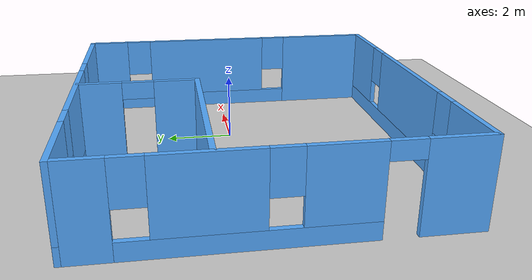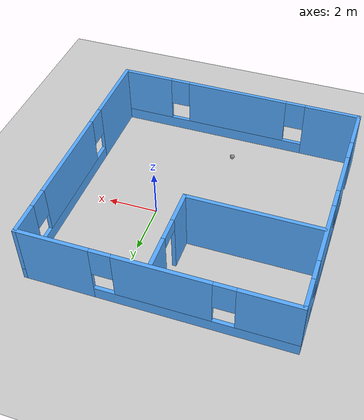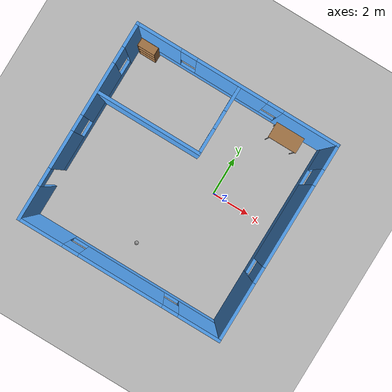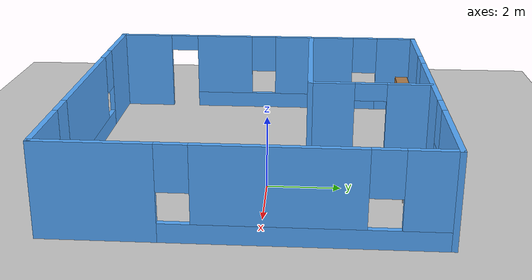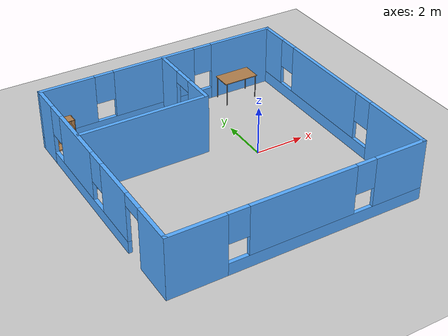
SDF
<sdf version="1.6">
 <world name="default">
  <model name="ground_plane">
   <static>1</static>
   <link name="link">
    <collision name="collision">
     <geometry><plane><normal>0 0 1</normal><size>100 100</size></plane></geometry>
     <surface>
      <contact><collide_bitmask>65535</collide_bitmask></contact>
      <friction><ode><mu>100</mu><mu2>50</mu2></ode></friction>
     </surface>
    </collision>
    <visual name="visual">
     <cast_shadows>0</cast_shadows>
     <geometry><plane><normal>0 0 1</normal><size>100 100</size></plane></geometry>
     <material>
      <script><uri>file://media/materials/scripts/gazebo.material</uri><name>Gazebo/Grey</name></script>
     </material>
    </visual>
   </link>
  </model>
  <light name="sun" type="directional">
   <pose>0 0 10 0 -0 0</pose>
   <diffuse>0.8 0.8 0.8 1</diffuse>
   <specular>0.2 0.2 0.2 1</specular>
   <attenuation>
    <range>1000</range>
    <constant>0.9</constant>
    <linear>0.01</linear>
    <quadratic>0.001</quadratic>
   </attenuation>
   <direction>-0.5 0.1 -0.9</direction>
  </light>
  <gravity>0 0 -9.8</gravity>
  <magnetic_field>6e-06 2.3e-05 -4.2e-05</magnetic_field>
  <atmosphere type="adiabatic"/>
  <physics name="default_physics" default="0" type="ode">
   <max_step_size>0.001</max_step_size>
   <real_time_factor>1</real_time_factor>
   <real_time_update_rate>1000</real_time_update_rate>
  </physics>
  <scene><ambient>0.4 0.4 0.4 1</ambient><background>0.7 0.7 0.7 1</background><shadows>1</shadows></scene>
  <spherical_coordinates>
   <surface_model>EARTH_WGS84</surface_model>
   <latitude_deg>0</latitude_deg>
   <longitude_deg>0</longitude_deg>
   <elevation>0</elevation>
   <heading_deg>0</heading_deg>
  </spherical_coordinates>
  <model name="my_building">
   <pose>-1.74815 -0.39506 0 0 -0 0</pose>
   <link name="Wall_0">
    <pose>-5.05 0 0 0 0 -1.5708</pose>
    <visual name="Wall_0_Visual_0">
     <pose>-4.36715 0 1.25 0 -0 0</pose>
     <geometry><box><size>1.26569 0.15 2.5</size></box></geometry>
     <material>
      <script><uri>file://media/materials/scripts/gazebo.material</uri><name>Gazebo/Grey</name></script>
      <ambient>0.333333 0.666667 1 1</ambient>
     </material>
     <meta><layer>0</layer></meta>
    </visual>
    <collision name="Wall_0_Collision_0">
     <geometry><box><size>1.26569 0.15 2.5</size></box></geometry>
     <pose>-4.36715 0 1.25 0 -0 0</pose>
    </collision>
    <visual name="Wall_0_Visual_1">
     <pose>4.13216 0 1.25 0 -0 0</pose>
     <geometry><box><size>1.73567 0.15 2.5</size></box></geometry>
     <material>
      <script><uri>file://media/materials/scripts/gazebo.material</uri><name>Gazebo/Grey</name></script>
      <ambient>0.333333 0.666667 1 1</ambient>
     </material>
     <meta><layer>0</layer></meta>
    </visual>
    <collision name="Wall_0_Collision_1">
     <geometry><box><size>1.73567 0.15 2.5</size></box></geometry>
     <pose>4.13216 0 1.25 0 -0 0</pose>
    </collision>
    <visual name="Wall_0_Visual_2">
     <pose>-0.68499 0 0.25 0 -0 0</pose>
     <geometry><box><size>6.09864 0.15 0.5</size></box></geometry>
     <material>
      <script><uri>file://media/materials/scripts/gazebo.material</uri><name>Gazebo/Grey</name></script>
      <ambient>0.333333 0.666667 1 1</ambient>
     </material>
     <meta><layer>0</layer></meta>
    </visual>
    <collision name="Wall_0_Collision_2">
     <geometry><box><size>6.09864 0.15 0.5</size></box></geometry>
     <pose>-0.68499 0 0.25 0 -0 0</pose>
    </collision>
    <visual name="Wall_0_Visual_3">
     <pose>-1.62125 0 1.5 0 -0 0</pose>
     <geometry><box><size>2.62611 0.15 2</size></box></geometry>
     <material>
      <script><uri>file://media/materials/scripts/gazebo.material</uri><name>Gazebo/Grey</name></script>
      <ambient>0.333333 0.666667 1 1</ambient>
     </material>
     <meta><layer>0</layer></meta>
    </visual>
    <collision name="Wall_0_Collision_3">
     <geometry><box><size>2.62611 0.15 2</size></box></geometry>
     <pose>-1.62125 0 1.5 0 -0 0</pose>
    </collision>
    <visual name="Wall_0_Visual_4">
     <pose>1.42806 0 1.5 0 -0 0</pose>
     <geometry><box><size>1.87253 0.15 2</size></box></geometry>
     <material>
      <script><uri>file://media/materials/scripts/gazebo.material</uri><name>Gazebo/Grey</name></script>
      <ambient>0.333333 0.666667 1 1</ambient>
     </material>
     <meta><layer>0</layer></meta>
    </visual>
    <collision name="Wall_0_Collision_4">
     <geometry><box><size>1.87253 0.15 2</size></box></geometry>
     <pose>1.42806 0 1.5 0 -0 0</pose>
    </collision>
    <visual name="Wall_0_Visual_5">
     <pose>-3.33431 0 1.9 0 -0 0</pose>
     <geometry><box><size>0.8 0.15 1.2</size></box></geometry>
     <material>
      <script><uri>file://media/materials/scripts/gazebo.material</uri><name>Gazebo/Grey</name></script>
      <ambient>0.333333 0.666667 1 1</ambient>
     </material>
     <meta><layer>0</layer></meta>
    </visual>
    <collision name="Wall_0_Collision_5">
     <geometry><box><size>0.8 0.15 1.2</size></box></geometry>
     <pose>-3.33431 0 1.9 0 -0 0</pose>
    </collision>
    <visual name="Wall_0_Visual_6">
     <pose>0.091798 0 1.9 0 -0 0</pose>
     <geometry><box><size>0.8 0.15 1.2</size></box></geometry>
     <material>
      <script><uri>file://media/materials/scripts/gazebo.material</uri><name>Gazebo/Grey</name></script>
      <ambient>0.333333 0.666667 1 1</ambient>
     </material>
     <meta><layer>0</layer></meta>
    </visual>
    <collision name="Wall_0_Collision_6">
     <geometry><box><size>0.8 0.15 1.2</size></box></geometry>
     <pose>0.091798 0 1.9 0 -0 0</pose>
    </collision>
    <visual name="Wall_0_Visual_7">
     <pose>2.81433 0 2.25 0 -0 0</pose>
     <geometry><box><size>0.9 0.15 0.5</size></box></geometry>
     <material>
      <script><uri>file://media/materials/scripts/gazebo.material</uri><name>Gazebo/Grey</name></script>
      <ambient>0.333333 0.666667 1 1</ambient>
     </material>
     <meta><layer>0</layer></meta>
    </visual>
    <collision name="Wall_0_Collision_7">
     <geometry><box><size>0.9 0.15 0.5</size></box></geometry>
     <pose>2.81433 0 2.25 0 -0 0</pose>
    </collision>
   </link>
   <link name="Wall_1">
    <pose>0 -4.925 0 0 -0 0</pose>
    <visual name="Wall_1_Visual_0">
     <pose>-3.98741 0 1.25 0 -0 0</pose>
     <geometry><box><size>2.27517 0.15 2.5</size></box></geometry>
     <material>
      <script><uri>file://media/materials/scripts/gazebo.material</uri><name>Gazebo/Grey</name></script>
      <ambient>0.333333 0.666667 1 1</ambient>
     </material>
     <meta><layer>0</layer></meta>
    </visual>
    <collision name="Wall_1_Collision_0">
     <geometry><box><size>2.27517 0.15 2.5</size></box></geometry>
     <pose>-3.98741 0 1.25 0 -0 0</pose>
    </collision>
    <visual name="Wall_1_Visual_1">
     <pose>1.13759 0 0.25 0 -0 0</pose>
     <geometry><box><size>7.97483 0.15 0.5</size></box></geometry>
     <material>
      <script><uri>file://media/materials/scripts/gazebo.material</uri><name>Gazebo/Grey</name></script>
      <ambient>0.333333 0.666667 1 1</ambient>
     </material>
     <meta><layer>0</layer></meta>
    </visual>
    <collision name="Wall_1_Collision_1">
     <geometry><box><size>7.97483 0.15 0.5</size></box></geometry>
     <pose>1.13759 0 0.25 0 -0 0</pose>
    </collision>
    <visual name="Wall_1_Visual_2">
     <pose>0.058568 0 1.5 0 -0 0</pose>
     <geometry><box><size>4.2168 0.15 2</size></box></geometry>
     <material>
      <script><uri>file://media/materials/scripts/gazebo.material</uri><name>Gazebo/Grey</name></script>
      <ambient>0.333333 0.666667 1 1</ambient>
     </material>
     <meta><layer>0</layer></meta>
    </visual>
    <collision name="Wall_1_Collision_2">
     <geometry><box><size>4.2168 0.15 2</size></box></geometry>
     <pose>0.058568 0 1.5 0 -0 0</pose>
    </collision>
    <visual name="Wall_1_Visual_3">
     <pose>4.04598 0 1.5 0 -0 0</pose>
     <geometry><box><size>2.15803 0.15 2</size></box></geometry>
     <material>
      <script><uri>file://media/materials/scripts/gazebo.material</uri><name>Gazebo/Grey</name></script>
      <ambient>0.333333 0.666667 1 1</ambient>
     </material>
     <meta><layer>0</layer></meta>
    </visual>
    <collision name="Wall_1_Collision_3">
     <geometry><box><size>2.15803 0.15 2</size></box></geometry>
     <pose>4.04598 0 1.5 0 -0 0</pose>
    </collision>
    <visual name="Wall_1_Visual_4">
     <pose>-2.44983 0 1.9 0 -0 0</pose>
     <geometry><box><size>0.8 0.15 1.2</size></box></geometry>
     <material>
      <script><uri>file://media/materials/scripts/gazebo.material</uri><name>Gazebo/Grey</name></script>
      <ambient>0.333333 0.666667 1 1</ambient>
     </material>
     <meta><layer>0</layer></meta>
    </visual>
    <collision name="Wall_1_Collision_4">
     <geometry><box><size>0.8 0.15 1.2</size></box></geometry>
     <pose>-2.44983 0 1.9 0 -0 0</pose>
    </collision>
    <visual name="Wall_1_Visual_5">
     <pose>2.56697 0 1.9 0 -0 0</pose>
     <geometry><box><size>0.8 0.15 1.2</size></box></geometry>
     <material>
      <script><uri>file://media/materials/scripts/gazebo.material</uri><name>Gazebo/Grey</name></script>
      <ambient>0.333333 0.666667 1 1</ambient>
     </material>
     <meta><layer>0</layer></meta>
    </visual>
    <collision name="Wall_1_Collision_5">
     <geometry><box><size>0.8 0.15 1.2</size></box></geometry>
     <pose>2.56697 0 1.9 0 -0 0</pose>
    </collision>
   </link>
   <link name="Wall_2">
    <pose>5.05 0 0 0 -0 1.5708</pose>
    <visual name="Wall_2_Visual_0">
     <pose>-3.51065 0 1.25 0 -0 0</pose>
     <geometry><box><size>2.97869 0.15 2.5</size></box></geometry>
     <material>
      <script><uri>file://media/materials/scripts/gazebo.material</uri><name>Gazebo/Grey</name></script>
      <ambient>0.333333 0.666667 1 1</ambient>
     </material>
     <meta><layer>0</layer></meta>
    </visual>
    <collision name="Wall_2_Collision_0">
     <geometry><box><size>2.97869 0.15 2.5</size></box></geometry>
     <pose>-3.51065 0 1.25 0 -0 0</pose>
    </collision>
    <visual name="Wall_2_Visual_1">
     <pose>1.48935 0 0.25 0 -0 0</pose>
     <geometry><box><size>7.02131 0.15 0.5</size></box></geometry>
     <material>
      <script><uri>file://media/materials/scripts/gazebo.material</uri><name>Gazebo/Grey</name></script>
      <ambient>0.333333 0.666667 1 1</ambient>
     </material>
     <meta><layer>0</layer></meta>
    </visual>
    <collision name="Wall_2_Collision_1">
     <geometry><box><size>7.02131 0.15 0.5</size></box></geometry>
     <pose>1.48935 0 0.25 0 -0 0</pose>
    </collision>
    <visual name="Wall_2_Visual_2">
     <pose>0.841204 0 1.5 0 -0 0</pose>
     <geometry><box><size>4.12503 0.15 2</size></box></geometry>
     <material>
      <script><uri>file://media/materials/scripts/gazebo.material</uri><name>Gazebo/Grey</name></script>
      <ambient>0.333333 0.666667 1 1</ambient>
     </material>
     <meta><layer>0</layer></meta>
    </visual>
    <collision name="Wall_2_Collision_2">
     <geometry><box><size>4.12503 0.15 2</size></box></geometry>
     <pose>0.841204 0 1.5 0 -0 0</pose>
    </collision>
    <visual name="Wall_2_Visual_3">
     <pose>4.35186 0 1.5 0 -0 0</pose>
     <geometry><box><size>1.29628 0.15 2</size></box></geometry>
     <material>
      <script><uri>file://media/materials/scripts/gazebo.material</uri><name>Gazebo/Grey</name></script>
      <ambient>0.333333 0.666667 1 1</ambient>
     </material>
     <meta><layer>0</layer></meta>
    </visual>
    <collision name="Wall_2_Collision_3">
     <geometry><box><size>1.29628 0.15 2</size></box></geometry>
     <pose>4.35186 0 1.5 0 -0 0</pose>
    </collision>
    <visual name="Wall_2_Visual_4">
     <pose>-1.62131 0 1.9 0 -0 0</pose>
     <geometry><box><size>0.8 0.15 1.2</size></box></geometry>
     <material>
      <script><uri>file://media/materials/scripts/gazebo.material</uri><name>Gazebo/Grey</name></script>
      <ambient>0.333333 0.666667 1 1</ambient>
     </material>
     <meta><layer>0</layer></meta>
    </visual>
    <collision name="Wall_2_Collision_4">
     <geometry><box><size>0.8 0.15 1.2</size></box></geometry>
     <pose>-1.62131 0 1.9 0 -0 0</pose>
    </collision>
    <visual name="Wall_2_Visual_5">
     <pose>3.30372 0 1.9 0 -0 0</pose>
     <geometry><box><size>0.8 0.15 1.2</size></box></geometry>
     <material>
      <script><uri>file://media/materials/scripts/gazebo.material</uri><name>Gazebo/Grey</name></script>
      <ambient>0.333333 0.666667 1 1</ambient>
     </material>
     <meta><layer>0</layer></meta>
    </visual>
    <collision name="Wall_2_Collision_5">
     <geometry><box><size>0.8 0.15 1.2</size></box></geometry>
     <pose>3.30372 0 1.9 0 -0 0</pose>
    </collision>
   </link>
   <link name="Wall_3">
    <pose>0 4.925 0 0 -0 3.14159</pose>
    <visual name="Wall_3_Visual_0">
     <pose>-3.70949 0 1.25 0 -0 0</pose>
     <geometry><box><size>2.83102 0.15 2.5</size></box></geometry>
     <material>
      <script><uri>file://media/materials/scripts/gazebo.material</uri><name>Gazebo/Grey</name></script>
      <ambient>0.333333 0.666667 1 1</ambient>
     </material>
     <meta><layer>0</layer></meta>
    </visual>
    <collision name="Wall_3_Collision_0">
     <geometry><box><size>2.83102 0.15 2.5</size></box></geometry>
     <pose>-3.70949 0 1.25 0 -0 0</pose>
    </collision>
    <visual name="Wall_3_Visual_1">
     <pose>1.41551 0 0.25 0 -0 0</pose>
     <geometry><box><size>7.41898 0.15 0.5</size></box></geometry>
     <material>
      <script><uri>file://media/materials/scripts/gazebo.material</uri><name>Gazebo/Grey</name></script>
      <ambient>0.333333 0.666667 1 1</ambient>
     </material>
     <meta><layer>0</layer></meta>
    </visual>
    <collision name="Wall_3_Collision_1">
     <geometry><box><size>7.41898 0.15 0.5</size></box></geometry>
     <pose>1.41551 0 0.25 0 -0 0</pose>
    </collision>
    <visual name="Wall_3_Visual_2">
     <pose>0.277924 0 1.5 0 -0 0</pose>
     <geometry><box><size>3.54381 0.15 2</size></box></geometry>
     <material>
      <script><uri>file://media/materials/scripts/gazebo.material</uri><name>Gazebo/Grey</name></script>
      <ambient>0.333333 0.666667 1 1</ambient>
     </material>
     <meta><layer>0</layer></meta>
    </visual>
    <collision name="Wall_3_Collision_2">
     <geometry><box><size>3.54381 0.15 2</size></box></geometry>
     <pose>0.277924 0 1.5 0 -0 0</pose>
    </collision>
    <visual name="Wall_3_Visual_3">
     <pose>3.98741 0 1.5 0 -0 0</pose>
     <geometry><box><size>2.27517 0.15 2</size></box></geometry>
     <material>
      <script><uri>file://media/materials/scripts/gazebo.material</uri><name>Gazebo/Grey</name></script>
      <ambient>0.333333 0.666667 1 1</ambient>
     </material>
     <meta><layer>0</layer></meta>
    </visual>
    <collision name="Wall_3_Collision_3">
     <geometry><box><size>2.27517 0.15 2</size></box></geometry>
     <pose>3.98741 0 1.5 0 -0 0</pose>
    </collision>
    <visual name="Wall_3_Visual_4">
     <pose>-1.89398 0 1.9 0 -0 0</pose>
     <geometry><box><size>0.8 0.15 1.2</size></box></geometry>
     <material>
      <script><uri>file://media/materials/scripts/gazebo.material</uri><name>Gazebo/Grey</name></script>
      <ambient>0.333333 0.666667 1 1</ambient>
     </material>
     <meta><layer>0</layer></meta>
    </visual>
    <collision name="Wall_3_Collision_4">
     <geometry><box><size>0.8 0.15 1.2</size></box></geometry>
     <pose>-1.89398 0 1.9 0 -0 0</pose>
    </collision>
    <visual name="Wall_3_Visual_5">
     <pose>2.44983 0 1.9 0 -0 0</pose>
     <geometry><box><size>0.8 0.15 1.2</size></box></geometry>
     <material>
      <script><uri>file://media/materials/scripts/gazebo.material</uri><name>Gazebo/Grey</name></script>
      <ambient>0.333333 0.666667 1 1</ambient>
     </material>
     <meta><layer>0</layer></meta>
    </visual>
    <collision name="Wall_3_Collision_5">
     <geometry><box><size>0.8 0.15 1.2</size></box></geometry>
     <pose>2.44983 0 1.9 0 -0 0</pose>
    </collision>
   </link>
   <link name="Wall_5">
    <pose>0.119749 3.18882 0 0 0 -1.5708</pose>
    <visual name="Wall_5_Visual_0">
     <pose>-1.11156 0 1.25 0 -0 0</pose>
     <geometry><box><size>1.27687 0.15 2.5</size></box></geometry>
     <material>
      <script><uri>file://media/materials/scripts/gazebo.material</uri><name>Gazebo/Grey</name></script>
      <ambient>0.333333 0.666667 1 1</ambient>
     </material>
     <meta><layer>0</layer></meta>
    </visual>
    <collision name="Wall_5_Collision_0">
     <geometry><box><size>1.27687 0.15 2.5</size></box></geometry>
     <pose>-1.11156 0 1.25 0 -0 0</pose>
    </collision>
    <visual name="Wall_5_Visual_1">
     <pose>1.08844 0 1.25 0 -0 0</pose>
     <geometry><box><size>1.32313 0.15 2.5</size></box></geometry>
     <material>
      <script><uri>file://media/materials/scripts/gazebo.material</uri><name>Gazebo/Grey</name></script>
      <ambient>0.333333 0.666667 1 1</ambient>
     </material>
     <meta><layer>0</layer></meta>
    </visual>
    <collision name="Wall_5_Collision_1">
     <geometry><box><size>1.32313 0.15 2.5</size></box></geometry>
     <pose>1.08844 0 1.25 0 -0 0</pose>
    </collision>
    <visual name="Wall_5_Visual_2">
     <pose>-0.023128 0 2.25 0 -0 0</pose>
     <geometry><box><size>0.9 0.15 0.5</size></box></geometry>
     <material>
      <script><uri>file://media/materials/scripts/gazebo.material</uri><name>Gazebo/Grey</name></script>
      <ambient>0.333333 0.666667 1 1</ambient>
     </material>
     <meta><layer>0</layer></meta>
    </visual>
    <collision name="Wall_5_Collision_2">
     <geometry><box><size>0.9 0.15 0.5</size></box></geometry>
     <pose>-0.023128 0 2.25 0 -0 0</pose>
    </collision>
   </link>
   <link name="Wall_6">
    <collision name="Wall_6_Collision">
     <geometry><box><size>5.25 0.15 2.5</size></box></geometry>
     <pose>0 0 1.25 0 -0 0</pose>
    </collision>
    <visual name="Wall_6_Visual">
     <pose>0 0 1.25 0 -0 0</pose>
     <geometry><box><size>5.25 0.15 2.5</size></box></geometry>
     <material>
      <script><uri>file://media/materials/scripts/gazebo.material</uri><name>Gazebo/Grey</name></script>
      <ambient>0.333333 0.666667 1 1</ambient>
     </material>
     <meta><layer>0</layer></meta>
    </visual>
    <pose>-2.43025 1.51382 0 0 -0 3.14159</pose>
   </link>
   <static>1</static>
  </model>
  <model name="bookshelf">
   <static>1</static>
   <link name="link">
    <inertial><mass>1</mass></inertial>
    <collision name="back">
     <pose>0 0.005 0.6 0 -0 0</pose>
     <geometry><box><size>0.9 0.01 1.2</size></box></geometry>
    </collision>
    <visual name="visual1">
     <pose>0 0.005 0.6 0 -0 0</pose>
     <geometry><box><size>0.9 0.01 1.2</size></box></geometry>
     <material>
      <script><uri>file://media/materials/scripts/gazebo.material</uri><name>Gazebo/Wood</name></script>
     </material>
    </visual>
    <collision name="left_side">
     <pose>0.45 -0.195 0.6 0 -0 0</pose>
     <geometry><box><size>0.02 0.4 1.2</size></box></geometry>
    </collision>
    <visual name="visual2">
     <pose>0.45 -0.195 0.6 0 -0 0</pose>
     <geometry><box><size>0.02 0.4 1.2</size></box></geometry>
     <material>
      <script><uri>file://media/materials/scripts/gazebo.material</uri><name>Gazebo/Wood</name></script>
     </material>
    </visual>
    <collision name="right_side">
     <pose>-0.45 -0.195 0.6 0 -0 0</pose>
     <geometry><box><size>0.02 0.4 1.2</size></box></geometry>
    </collision>
    <visual name="visual3">
     <pose>-0.45 -0.195 0.6 0 -0 0</pose>
     <geometry><box><size>0.02 0.4 1.2</size></box></geometry>
     <material>
      <script><uri>file://media/materials/scripts/gazebo.material</uri><name>Gazebo/Wood</name></script>
     </material>
    </visual>
    <collision name="bottom">
     <pose>0 -0.195 0.03 0 -0 0</pose>
     <geometry><box><size>0.88 0.4 0.06</size></box></geometry>
    </collision>
    <visual name="visual4">
     <pose>0 -0.195 0.03 0 -0 0</pose>
     <geometry><box><size>0.88 0.4 0.06</size></box></geometry>
     <material>
      <script><uri>file://media/materials/scripts/gazebo.material</uri><name>Gazebo/Wood</name></script>
     </material>
    </visual>
    <collision name="top">
     <pose>0 -0.195 1.19 0 -0 0</pose>
     <geometry><box><size>0.88 0.4 0.02</size></box></geometry>
    </collision>
    <visual name="visual5">
     <pose>0 -0.195 1.19 0 -0 0</pose>
     <geometry><box><size>0.88 0.4 0.02</size></box></geometry>
     <material>
      <script><uri>file://media/materials/scripts/gazebo.material</uri><name>Gazebo/Wood</name></script>
     </material>
    </visual>
    <collision name="low_shelf">
     <pose>0 -0.195 0.43 0 -0 0</pose>
     <geometry><box><size>0.88 0.4 0.02</size></box></geometry>
    </collision>
    <visual name="visual6">
     <pose>0 -0.195 0.43 0 -0 0</pose>
     <geometry><box><size>0.88 0.4 0.02</size></box></geometry>
     <material>
      <script><uri>file://media/materials/scripts/gazebo.material</uri><name>Gazebo/Wood</name></script>
     </material>
    </visual>
    <collision name="high_shelf">
     <pose>0 -0.195 0.8 0 -0 0</pose>
     <geometry><box><size>0.88 0.4 0.02</size></box></geometry>
    </collision>
    <visual name="visual7">
     <pose>0 -0.195 0.8 0 -0 0</pose>
     <geometry><box><size>0.88 0.4 0.02</size></box></geometry>
     <material>
      <script><uri>file://media/materials/scripts/gazebo.material</uri><name>Gazebo/Wood</name></script>
     </material>
    </visual>
   </link>
   <pose>-6.19815 4.40277 0 0 -0 0</pose>
  </model>
  <model name="table">
   <static>1</static>
   <link name="link">
    <collision name="surface">
     <pose>0 0 1 0 -0 0</pose>
     <geometry><box><size>1.5 0.8 0.03</size></box></geometry>
     <surface><friction><ode><mu>0.6</mu><mu2>0.6</mu2></ode></friction></surface>
    </collision>
    <visual name="visual1">
     <pose>0 0 1 0 -0 0</pose>
     <geometry><box><size>1.5 0.8 0.03</size></box></geometry>
     <material>
      <script><uri>file://media/materials/scripts/gazebo.material</uri><name>Gazebo/Wood</name></script>
     </material>
    </visual>
    <collision name="front_left_leg">
     <pose>0.68 0.38 0.5 0 -0 0</pose>
     <geometry><cylinder><radius>0.02</radius><length>1</length></cylinder></geometry>
    </collision>
    <visual name="front_left_leg">
     <pose>0.68 0.38 0.5 0 -0 0</pose>
     <geometry><cylinder><radius>0.02</radius><length>1</length></cylinder></geometry>
     <material>
      <script><uri>file://media/materials/scripts/gazebo.material</uri><name>Gazebo/Grey</name></script>
     </material>
    </visual>
    <collision name="front_right_leg">
     <pose>0.68 -0.38 0.5 0 -0 0</pose>
     <geometry><cylinder><radius>0.02</radius><length>1</length></cylinder></geometry>
    </collision>
    <visual name="front_right_leg">
     <pose>0.68 -0.38 0.5 0 -0 0</pose>
     <geometry><cylinder><radius>0.02</radius><length>1</length></cylinder></geometry>
     <material>
      <script><uri>file://media/materials/scripts/gazebo.material</uri><name>Gazebo/Grey</name></script>
     </material>
    </visual>
    <collision name="back_right_leg">
     <pose>-0.68 -0.38 0.5 0 -0 0</pose>
     <geometry><cylinder><radius>0.02</radius><length>1</length></cylinder></geometry>
    </collision>
    <visual name="back_right_leg">
     <pose>-0.68 -0.38 0.5 0 -0 0</pose>
     <geometry><cylinder><radius>0.02</radius><length>1</length></cylinder></geometry>
     <material>
      <script><uri>file://media/materials/scripts/gazebo.material</uri><name>Gazebo/Grey</name></script>
     </material>
    </visual>
    <collision name="back_left_leg">
     <pose>-0.68 0.38 0.5 0 -0 0</pose>
     <geometry><cylinder><radius>0.02</radius><length>1</length></cylinder></geometry>
    </collision>
    <visual name="back_left_leg">
     <pose>-0.68 0.38 0.5 0 -0 0</pose>
     <geometry><cylinder><radius>0.02</radius><length>1</length></cylinder></geometry>
     <material>
      <script><uri>file://media/materials/scripts/gazebo.material</uri><name>Gazebo/Grey</name></script>
     </material>
    </visual>
   </link>
   <pose>1.46724 3.98012 0 0 -0 0</pose>
  </model>
  <model name="my_ball">
   <link name="link_0">
    <inertial>
     <mass>1</mass>
     <inertia><ixx>0.1</ixx><ixy>0</ixy><ixz>0</ixz><iyy>0.1</iyy><iyz>0</iyz><izz>0.1</izz></inertia>
    </inertial>
    <visual name="visual">
     <geometry><sphere><radius>0.1</radius></sphere></geometry>
     <material>
      <lighting>1</lighting>
      <script><uri>file://media/materials/scripts/gazebo.material</uri><name>Gazebo/Grey</name></script>
      <shader type="pixel"><normal_map>__default__</normal_map></shader>
      <ambient>1 1 1 1</ambient>
      <diffuse>1 1 1 1</diffuse>
      <specular>1 1 1 1</specular>
      <emissive>0 0 0 1</emissive>
     </material>
    </visual>
    <collision name="collision">
     <geometry><sphere><radius>0.1</radius></sphere></geometry>
     <surface>
      <friction>
       <ode><mu>1</mu><mu2>1</mu2><fdir1>0 0 0</fdir1><slip1>0</slip1><slip2>0</slip2></ode>
       <torsional>
        <coefficient>1</coefficient>
        <patch_radius>0</patch_radius>
        <surface_radius>0</surface_radius>
        <use_patch_radius>1</use_patch_radius>
        <ode><slip>0</slip></ode>
       </torsional>
      </friction>
      <bounce><restitution_coefficient>0</restitution_coefficient><threshold>1e+06</threshold></bounce>
      <contact>
       <collide_without_contact>0</collide_without_contact>
       <collide_without_contact_bitmask>1</collide_without_contact_bitmask>
       <collide_bitmask>1</collide_bitmask>
       <ode>
        <soft_cfm>0</soft_cfm>
        <soft_erp>0.2</soft_erp>
        <kp>1e+13</kp>
        <kd>1</kd>
        <max_vel>0.01</max_vel>
        <min_depth>0</min_depth>
       </ode>
       <bullet>
        <split_impulse>1</split_impulse>
        <split_impulse_penetration_threshold>-0.01</split_impulse_penetration_threshold>
        <soft_cfm>0</soft_cfm>
        <soft_erp>0.2</soft_erp>
        <kp>1e+13</kp>
        <kd>1</kd>
       </bullet>
      </contact>
     </surface>
    </collision>
   </link>
   <static>0</static>
   <pose>-1.95431 -3.98559 0.1 0 -0 0</pose>
  </model>
 </world>
</sdf>
